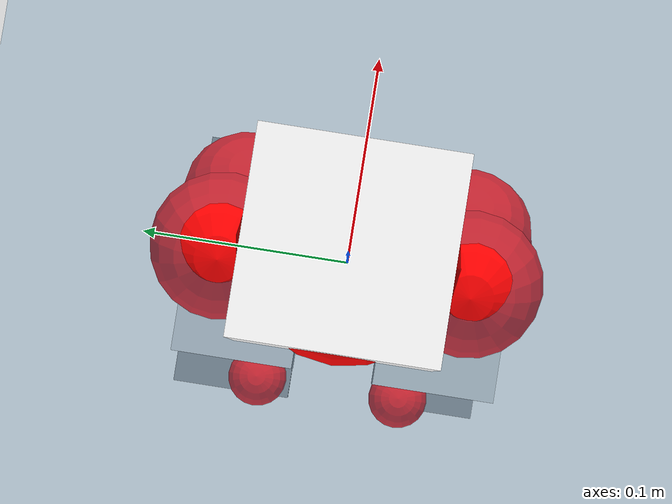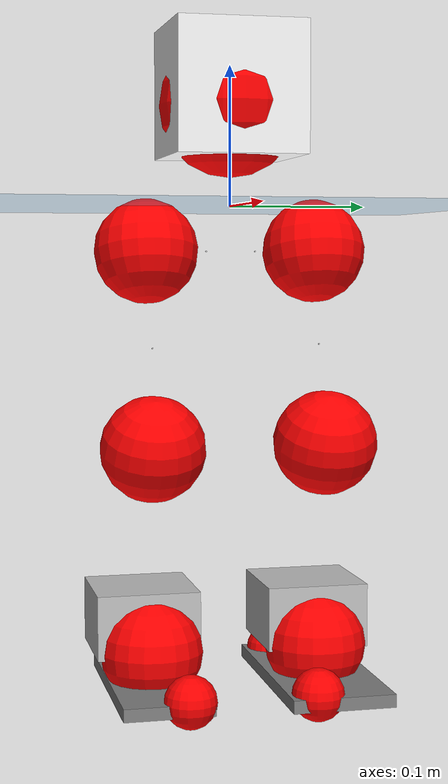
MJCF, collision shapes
<mujoco model="pi_12dof_release_v1">
  <compiler angle="radian" assetdir="assets" balanceinertia="true" inertiafromgeom="false"/>

  <option timestep="0.005" density="1.2" viscosity="2e-05"/>

  <size nkey="1"/>

  <visual>
    <quality shadowsize="8192"/>
    <map shadowclip="0.5"/>
  </visual>

  <default>
    <default class="/">
      <joint armature="0.01" damping="0.01" frictionloss="0.01"/>
      <geom contype="0" conaffinity="0" group="1" solref="-1000 -80"/>
      <site size="0.01 0.005 0.005" group="5"/>
      <general forcelimited="true" biastype="affine" gainprm="20" biasprm="0 -20 -0.5"/>
      <default class="foot">
        <geom size="0.0845 0.036 0.005" type="box" condim="6" group="4" priority="1" friction="0.9 0.2 0.2" solimp="0.015 1 0.005"/>
      </default>
      <default class="reward_collision_sphere">
        <geom group="5" rgba="1 0 0 1"/>
      </default>
    </default>
  </default>

  <asset>
    <texture type="skybox" colorspace="auto" name="//unnamed_texture_0" builtin="gradient" rgb1="0.95 0.95 0.95" rgb2="0.95 0.95 0.95" width="100" height="600"/>
    <texture type="2d" colorspace="auto" name="texplane" builtin="checker" rgb1="0.345 0.575 0.748" rgb2="0.345 0.575 0.748" markrgb="1 1 1" width="512" height="512"/>
    <material name="MatPlane" class="/" texture="texplane" texuniform="true" texrepeat="2 2" specular="0.9"/>
    <mesh name="baselink_1" class="/" file="baselink_1.STL"/>
    <mesh name="r_hip_pitch_link" class="/" file="r_hip_pitch_link.STL"/>
    <mesh name="r_hip_roll_link" class="/" file="r_hip_roll_link.STL"/>
    <mesh name="r_thigh_link" class="/" file="r_thigh_link.STL"/>
    <mesh name="r_calf_link" class="/" file="r_calf_link.STL"/>
    <mesh name="r_ankle_pitch_link" class="/" file="r_ankle_pitch_link.STL"/>
    <mesh name="r_ankle_roll_link" class="/" file="r_ankle_roll_link.STL"/>
    <mesh name="l_hip_pitch_link" class="/" file="l_hip_pitch_link.STL"/>
    <mesh name="l_hip_roll_link" class="/" file="l_hip_roll_link.STL"/>
    <mesh name="l_thigh_link" class="/" file="l_thigh_link.STL"/>
    <mesh name="l_calf_link" class="/" file="l_calf_link.STL"/>
    <mesh name="l_ankle_pitch_link" class="/" file="l_ankle_pitch_link.STL"/>
    <mesh name="l_ankle_roll_link" class="/" file="l_ankle_roll_link.STL"/>
  </asset>

  <worldbody>
    <geom name="floor" class="/" size="100 100 0.125" type="plane" group="0" material="MatPlane"/>
    <light name="toplight_shadow" class="/" pos="0 0 5" dir="0.0990148 0.0990148 -0.990148" type="directional" ambient="0.04 0.04 0.04" diffuse="0.55 0.55 0.55" specular="0.12 0.12 0.12"/>
    <light name="toplight_fill" class="/" pos="0 0 5" dir="0.0990148 0.0990148 -0.990148" type="directional" castshadow="false" ambient="0.04 0.04 0.04" diffuse="0.3 0.3 0.3" specular="0.08 0.08 0.08"/>
    <body name="trunk" pos="0.000842464 6.04927e-05 0.00057326" quat="1 0.000181956 -0.000380008 6.95019e-05">
      <inertial pos="0.00290347 -0.000954678 0.0404589" quat="0.693643 0.00824935 0.0108615 0.72019" mass="1.75493" diaginertia="0.00947992 0.00276216 0.00449301"/>
      <joint name="//unnamed_joint_0" type="free"/>
      <geom name="//unnamed_geom_1" class="/" type="mesh" density="0" rgba="1 1 1 1" mesh="baselink_1"/>
      <geom name="//unnamed_geom_2" class="/" size="0.0465546 0.0465546 0.0465546" pos="0 0 0.0809948" type="box" rgba="1 1 1 1"/>
      <geom name="//unnamed_geom_3" class="reward_collision_sphere" size="0.05121" pos="0 0 0.0708704"/>
      <site name="imu" class="/" pos="-0.00360935 -0.0031322 -0.000501696" size="0.00931091"/>
      <camera name="track" class="/" pos="0 -1.57889 0" quat="0.707107 0.707107 0 0" mode="trackcom"/>
      <camera name="ego_camera" class="/" pos="0.0743546 0 0.182238" quat="-0.5 -0.5 0.5 0.5"/>
      <body name="r_hip_pitch_link" pos="-0.000193712 -0.0175968 -0.0330066" quat="0.992195 0.000151477 -0.124698 1.79623e-05">
        <inertial pos="0.00176673 -0.0441622 -0.000152866" quat="-0.0205969 0.705351 -0.0246588 0.70813" mass="0.298523" diaginertia="0.000103891 3.0018e-05 8.7699e-05"/>
        <joint name="r_hip_pitch_joint" class="/" pos="0 0 0" axis="8.76094e-05 -1 0.00021672" range="-1.74507 1.24406" armature="0.00961851" damping="0.0162771" frictionloss="0.00950911"/>
        <geom name="//unnamed_geom_4" class="/" type="mesh" density="0" rgba="0.75294 0.75294 0.75294 1" mesh="r_hip_pitch_link"/>
        <geom name="//unnamed_geom_5" class="/" size="0.000465546 0.000465546 0.000465546" type="box" rgba="0.75294 0.75294 0.75294 1"/>
        <body name="r_hip_roll_link" pos="0.000154276 -0.043631 9.92682e-05" quat="1 6.15224e-05 9.8541e-05 8.2906e-05">
          <inertial pos="-0.00126868 -0.000222161 -0.0630116" quat="0.705171 -0.0775342 -0.082379 0.699954" mass="0.311828" diaginertia="0.000320446 8.58505e-05 0.000136972"/>
          <joint name="r_hip_roll_joint" class="/" pos="0 0 0" axis="-0.999991 -0.00267281 -0.00330957" range="-0.12325 0.494082" armature="0.00939923" damping="0.00495527" frictionloss="0.00918803"/>
          <geom name="//unnamed_geom_6" class="/" type="mesh" density="0" rgba="0.75294 0.75294 0.75294 1" mesh="r_hip_roll_link"/>
          <geom name="//unnamed_geom_7" class="/" size="0.000465546 0.000465546 0.000465546" type="box" rgba="0.75294 0.75294 0.75294 1"/>
          <geom name="//unnamed_geom_8" class="reward_collision_sphere" size="0.0372437"/>
          <body name="r_thigh_link" pos="0.000590819 0.00121275 -0.070607" quat="1 5.67118e-05 0.000120618 1.47919e-05">
            <inertial pos="-5.50323e-05 0.00156148 -0.0490877" quat="0.737252 0.675618 -0.000284404 -0.000238858" mass="0.0911125" diaginertia="0.000118689 2.89266e-05 6.18447e-05"/>
            <joint name="r_thigh_joint" class="/" pos="0 0 0" axis="0.00289357 -0.000393311 -0.999996" range="-0.294174 0.595821" armature="0.00946777" damping="0.0066276" frictionloss="0.0090062"/>
            <geom name="//unnamed_geom_9" class="/" type="mesh" density="0" rgba="0.75294 0.75294 0.75294 1" mesh="r_thigh_link"/>
            <geom name="//unnamed_geom_10" class="/" size="0.000465546 0.000465546 0.000465546" type="box" rgba="0.75294 0.75294 0.75294 1"/>
            <body name="r_calf_link" pos="-0.00132517 -0.00274077 -0.0710139" quat="0.947651 -4.85414e-07 0.319309 -1.4e-07">
              <inertial pos="-0.000648152 0.000237097 -0.0706921" quat="0.999984 -0.00326367 0.000192977 0.00464005" mass="0.657741" diaginertia="0.00340423 0.00107241 0.000186738"/>
              <joint name="r_calf_joint" class="/" pos="0 0 0" axis="-0.00296042 -0.999995 -0.000732895" range="-1.65336 0.649364" armature="0.00967086" damping="0.00767718" frictionloss="0.0092246"/>
              <geom name="//unnamed_geom_11" class="/" type="mesh" density="0" rgba="0.75294 0.75294 0.75294 1" mesh="r_calf_link"/>
              <geom name="//unnamed_geom_12" class="/" size="0.000465546 0.000465546 0.000465546" type="box" rgba="0.75294 0.75294 0.75294 1"/>
              <geom name="//unnamed_geom_13" class="reward_collision_sphere" size="0.0372437"/>
              <body name="r_ankle_pitch_link" pos="6.63202e-05 0.000148594 -0.141149" quat="0.980091 -0.000134632 -0.198546 -3.34444e-05">
                <inertial pos="0.00485087 0.00280663 -0.00049085" quat="0.0030246 0.7074 0.00126797 0.706806" mass="0.142739" diaginertia="0.000297305 6.8114e-05 0.000127627"/>
                <joint name="r_ankle_pitch_joint" class="/" pos="0 0 0" axis="-0.000195639 -0.999999 -0.00102516" stiffness="0.000480883" range="-1.29847 0.509872" armature="0.00932833" damping="0.00765409" frictionloss="0.0091359"/>
                <geom name="//unnamed_geom_14" class="/" type="mesh" density="0" rgba="0.75294 0.75294 0.75294 1" mesh="r_ankle_pitch_link"/>
                <geom name="//unnamed_geom_15" class="/" size="0.0363126 0.0372437 0.0232773" type="box" rgba="0.75294 0.75294 0.75294 1"/>
                <body name="r_ankle_roll_link" pos="0.0761597 0.00304823 0.000451133" quat="1 -5.77961e-05 -5.55069e-05 -4.40132e-05">
                  <inertial pos="-0.0236494 -3.64012e-05 -0.0140789" quat="0.560501 0.428395 0.436563 0.558327" mass="0.418566" diaginertia="0.00107153 0.000315467 0.000299127"/>
                  <joint name="r_ankle_roll_joint" class="/" pos="0 0 0" axis="-1 0.000344803 0.00030453" range="-0.168909 0.159102" armature="0.00923968" damping="0.0025031" frictionloss="0.00964459"/>
                  <geom name="//unnamed_geom_16" class="/" type="mesh" density="0" rgba="0.75294 0.75294 0.75294 1" mesh="r_ankle_roll_link"/>
                  <geom name="//unnamed_geom_17" class="/" type="mesh" rgba="0.75294 0.75294 0.75294 1" mesh="r_ankle_roll_link"/>
                  <geom name="right_foot" class="foot" size="0.0738116 0.0318853 0.00457259" pos="-0.0505612 0 -0.0445471"/>
                  <geom name="//unnamed_geom_19" class="reward_collision_sphere" size="0.0372437" pos="-0.0495698 0 -0.0202487"/>
                  <geom name="//unnamed_geom_20" class="reward_collision_sphere" size="0.0186218" pos="0.0148709 0.0157889 -0.0404974"/>
                  <geom name="//unnamed_geom_21" class="reward_collision_sphere" size="0.0186218" pos="-0.118967 0.0157889 -0.0404974"/>
                  <site name="right_foot" class="foot" pos="-0.0505612 0 -0.0445471" size="0.00931091"/>
                </body>
              </body>
            </body>
          </body>
        </body>
      </body>
      <body name="l_hip_pitch_link" pos="-0.000264073 0.0185531 -0.0330426" quat="0.992193 3.9206e-05 -0.124712 -0.000125583">
        <inertial pos="0.000780942 0.0426664 6.06489e-05" quat="-0.0385742 0.70565 0.0295092 0.706894" mass="0.31447" diaginertia="0.000122471 3.2623e-05 0.000106884"/>
        <joint name="l_hip_pitch_joint" class="/" pos="0 0 0" axis="0.00290027 0.999996 0.000453645" range="-1.26302 1.74574" armature="0.00895482" damping="0.0115013" frictionloss="0.00925095"/>
        <geom name="//unnamed_geom_22" class="/" type="mesh" density="0" rgba="0.75294 0.75294 0.75294 1" mesh="l_hip_pitch_link"/>
        <geom name="//unnamed_geom_23" class="/" size="0.000465546 0.000465546 0.000465546" type="box" rgba="0.75294 0.75294 0.75294 1"/>
        <body name="l_hip_roll_link" pos="0.000199871 0.0437357 0.000376636" quat="1 -4.39725e-05 -0.000189408 -0.000122599">
          <inertial pos="-0.000709958 0.000419573 -0.0627612" quat="0.698934 -0.0745451 -0.0772811 0.70708" mass="0.311623" diaginertia="0.000318077 8.50523e-05 0.000136589"/>
          <joint name="l_hip_roll_joint" class="/" pos="0 0 0" axis="-0.999998 -0.000591387 0.00165019" stiffness="5.87129e-05" range="-0.503573 0.10195" armature="0.0094823" damping="0.000238242" frictionloss="0.00931108"/>
          <geom name="//unnamed_geom_24" class="/" type="mesh" density="0" rgba="0.75294 0.75294 0.75294 1" mesh="l_hip_roll_link"/>
          <geom name="//unnamed_geom_25" class="/" size="0.000465546 0.000465546 0.000465546" type="box" rgba="0.75294 0.75294 0.75294 1"/>
          <geom name="//unnamed_geom_26" class="reward_collision_sphere" size="0.0372437"/>
          <body name="l_thigh_link" pos="0.00104809 -0.000863846 -0.0693896" quat="1 -4.56653e-05 -1.61035e-05 -7.81378e-05">
            <inertial pos="-0.000232011 -0.000626657 -0.0491899" quat="0.676373 0.736553 0.00284848 0.00085342" mass="0.0917113" diaginertia="0.000119463 2.89359e-05 6.13639e-05"/>
            <joint name="l_thigh_joint" class="/" pos="0 0 0" axis="2.85301e-05 -0.000182764 -1" range="-0.600523 0.310593" armature="0.00932497" damping="0.00291053" frictionloss="0.00934876"/>
            <geom name="//unnamed_geom_27" class="/" type="mesh" density="0" rgba="0.75294 0.75294 0.75294 1" mesh="l_thigh_link"/>
            <geom name="//unnamed_geom_28" class="/" size="0.000465546 0.000465546 0.000465546" type="box" rgba="0.75294 0.75294 0.75294 1"/>
            <body name="l_calf_link" pos="-6.38273e-05 -0.000192092 -0.0714759" quat="0.947649 -0.000114014 0.319314 5.83675e-05">
              <inertial pos="0.000357858 0.00194373 -0.0703556" quat="0.999984 0.0031126 -1.00695e-05 0.00470646" mass="0.651125" diaginertia="0.00334463 0.00106256 0.000184551"/>
              <joint name="l_calf_joint" class="/" pos="0 0 0" axis="0.000106095 1 0.000350297" range="-0.640198 1.65003" armature="0.00930376" damping="0.00648392" frictionloss="0.00940925"/>
              <geom name="//unnamed_geom_29" class="/" type="mesh" density="0" rgba="0.75294 0.75294 0.75294 1" mesh="l_calf_link"/>
              <geom name="//unnamed_geom_30" class="/" size="0.000465546 0.000465546 0.000465546" type="box" rgba="0.75294 0.75294 0.75294 1"/>
              <geom name="//unnamed_geom_31" class="reward_collision_sphere" size="0.0372437"/>
              <body name="l_ankle_pitch_link" pos="0.000632767 0.000928431 -0.142091" quat="0.980069 1.80585e-05 -0.198659 3.63942e-05">
                <inertial pos="0.00576567 -0.00165003 -0.000199782" quat="-0.00229633 0.707271 0.00198937 0.706936" mass="0.144103" diaginertia="0.000295393 6.87217e-05 0.000127363"/>
                <joint name="l_ankle_pitch_joint" class="/" pos="0 0 0" axis="0.000120913 1 3.98705e-05" range="-0.50448 1.29932" armature="0.00961139" damping="0.00321419" frictionloss="0.00952779"/>
                <geom name="//unnamed_geom_32" class="/" type="mesh" density="0" rgba="0.75294 0.75294 0.75294 1" mesh="l_ankle_pitch_link"/>
                <geom name="//unnamed_geom_33" class="/" size="0.0363126 0.0372437 0.0232773" type="box" rgba="0.75294 0.75294 0.75294 1"/>
                <body name="l_ankle_roll_link" pos="0.074478 0.000476355 -0.000553277" quat="1 -5.17128e-05 -7.67968e-05 7.80294e-05">
                  <inertial pos="-0.0239073 -0.000623236 -0.0145085" quat="0.559723 0.43047 0.433889 0.559594" mass="0.427341" diaginertia="0.00108948 0.000320836 0.000303604"/>
                  <joint name="l_ankle_roll_joint" class="/" pos="0 0 0" axis="-0.999998 0.00123512 -0.00144315" stiffness="0.000295897" range="-0.146495 0.152828" armature="0.00894436" damping="0.00831964" frictionloss="0.00932519"/>
                  <geom name="//unnamed_geom_34" class="/" type="mesh" density="0" rgba="0.75294 0.75294 0.75294 1" mesh="l_ankle_roll_link"/>
                  <geom name="//unnamed_geom_35" class="/" type="mesh" rgba="0.75294 0.75294 0.75294 1" mesh="l_ankle_roll_link"/>
                  <geom name="left_foot" class="foot" size="0.0788805 0.036847 0.00466044" pos="-0.0505612 0 -0.0445471"/>
                  <geom name="//unnamed_geom_37" class="reward_collision_sphere" size="0.0372437" pos="-0.0495698 0 -0.0202487"/>
                  <geom name="//unnamed_geom_38" class="reward_collision_sphere" size="0.0186218" pos="0.0148709 -0.0157889 -0.0404974"/>
                  <geom name="//unnamed_geom_39" class="reward_collision_sphere" size="0.0186218" pos="-0.118967 -0.0157889 -0.0404974"/>
                  <site name="left_foot" class="foot" pos="-0.0505612 0 -0.0445471" size="0.00931091"/>
                </body>
              </body>
            </body>
          </body>
        </body>
      </body>
    </body>
  </worldbody>

  <contact>
    <pair class="/" geom1="floor" geom2="right_foot" name="//unnamed_contact_1"/>
    <pair class="/" geom1="floor" geom2="left_foot" name="//unnamed_contact_0"/>
  </contact>

  <actuator>
    <general name="r_hip_pitch_joint" class="/" joint="r_hip_pitch_joint" forcerange="-19.6231 19.6231" gainprm="18.6114" biasprm="0 -18.6114 -0.459472"/>
    <general name="r_hip_roll_joint" class="/" joint="r_hip_roll_joint" forcerange="-19.7852 19.7852" gainprm="18.6114" biasprm="0 -18.6114 -0.459472"/>
    <general name="r_thigh_joint" class="/" joint="r_thigh_joint" forcerange="-19.0935 19.0935" gainprm="18.6114" biasprm="0 -18.6114 -0.459472"/>
    <general name="r_calf_joint" class="/" joint="r_calf_joint" forcerange="-19.3556 19.3556" gainprm="18.6114" biasprm="0 -18.6114 -0.459472"/>
    <general name="r_ankle_pitch_joint" class="/" joint="r_ankle_pitch_joint" forcerange="-19.6 19.6" gainprm="18.6114" biasprm="0 -18.6114 -0.459472"/>
    <general name="r_ankle_roll_joint" class="/" joint="r_ankle_roll_joint" forcerange="-19.0483 19.0483" gainprm="18.6114" biasprm="0 -18.6114 -0.459472"/>
    <general name="l_hip_pitch_joint" class="/" joint="l_hip_pitch_joint" forcerange="-19.8925 19.8925" gainprm="18.6114" biasprm="0 -18.6114 -0.459472"/>
    <general name="l_hip_roll_joint" class="/" joint="l_hip_roll_joint" forcerange="-19.2158 19.2158" gainprm="18.6114" biasprm="0 -18.6114 -0.459472"/>
    <general name="l_thigh_joint" class="/" joint="l_thigh_joint" forcerange="-19.6348 19.6348" gainprm="18.6114" biasprm="0 -18.6114 -0.459472"/>
    <general name="l_calf_joint" class="/" joint="l_calf_joint" forcerange="-19.3457 19.3457" gainprm="18.6114" biasprm="0 -18.6114 -0.459472"/>
    <general name="l_ankle_pitch_joint" class="/" joint="l_ankle_pitch_joint" forcerange="-18.9441 18.9441" gainprm="18.6114" biasprm="0 -18.6114 -0.459472"/>
    <general name="l_ankle_roll_joint" class="/" joint="l_ankle_roll_joint" forcerange="-20.0911 20.0911" gainprm="18.6114" biasprm="0 -18.6114 -0.459472"/>
  </actuator>

  <sensor>
    <gyro site="imu" name="imu_angular_velocity"/>
    <velocimeter site="imu" name="imu_linear_velocity"/>
    <framelinvel objtype="site" objname="left_foot" name="left_foot_global_linear_velocity"/>
    <framelinvel objtype="site" objname="right_foot" name="right_foot_global_linear_velocity"/>
  </sensor>

  <keyframe>
    <key name="home" qpos="0 0 0.291 1 0 0 0 0.4 0 0 -0.8 0.4 0 -0.4 0 0 0.8 -0.4 0"/>
  </keyframe>
</mujoco>
